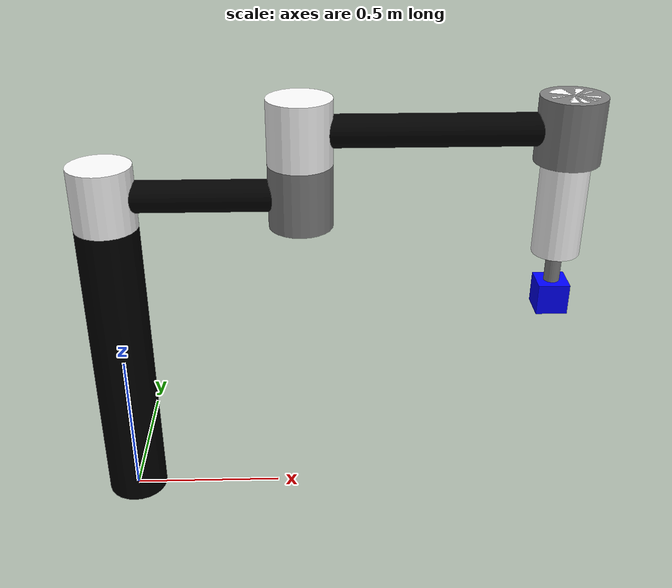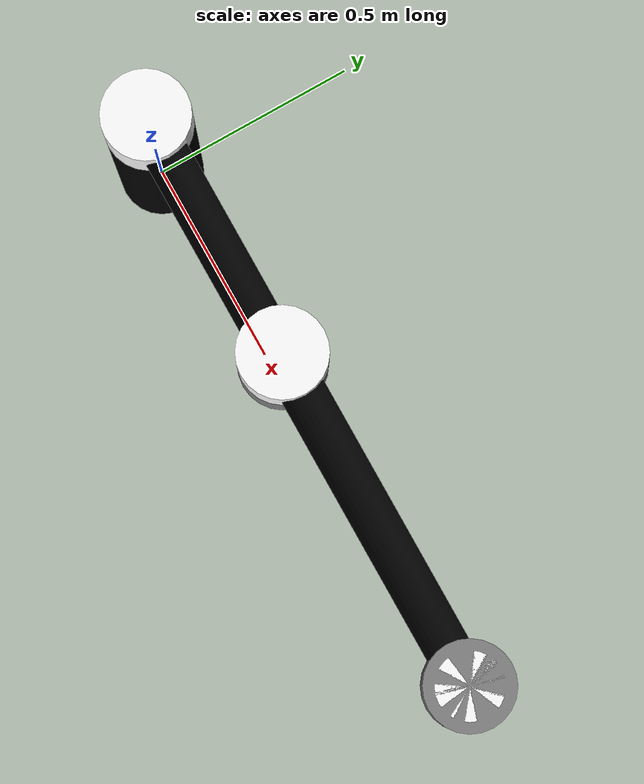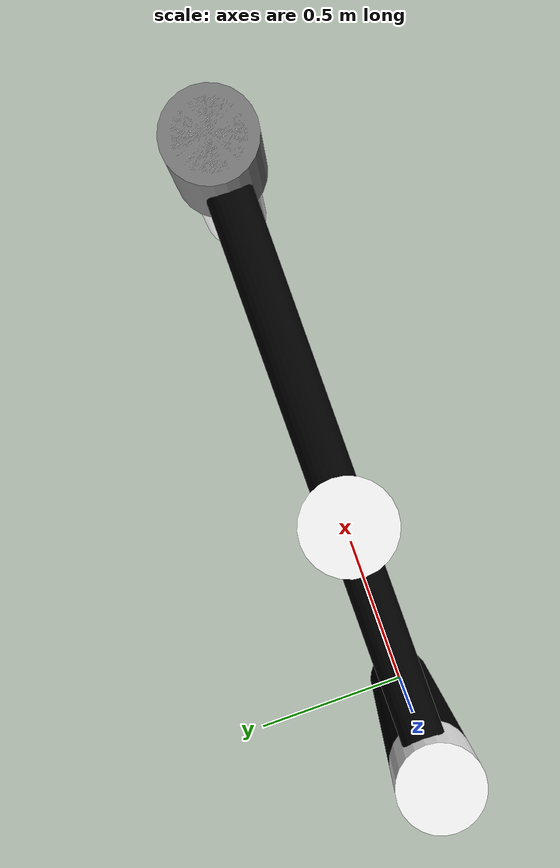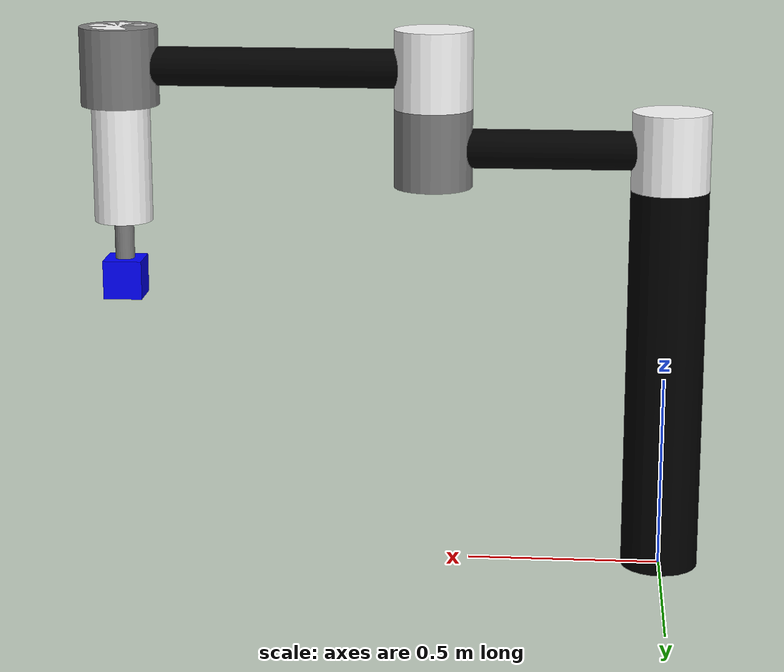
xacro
<?xml version="1.0"?>
<robot name="scara_robot" xmlns:xacro="http://www.ros.org/wiki/xacro">
    <material name="blue">
        <color rgba="0.0 0.0 1.0 1.0"/>
    </material>
    <material name="black">
        <color rgba="0.0 0.0 0.0 1.0"/>
    </material>
    <material name="white">
        <color rgba="1.0 1.0 1.0 1.0"/>
    </material>
       <material name="grey">
        <color rgba="0.5 0.5 0.5 1.0"/>
    </material>

    <xacro:property name="l0" value="0.7" />
    <xacro:property name="l1" value="0.6" />
    <xacro:property name="l2" value="0.8" />

    <xacro:property name="r" value="0.1" />
    <xacro:property name="d1" value="1" />
    <xacro:property name="d2" value="0.2" />
    <xacro:property name="d4" value="0.1" />
    <xacro:property name="d5" value="0.1" />
    <xacro:property name="d3" value="${d1+2*d2-d4-d5-l0}" />

    <link name="world"/>
    <link name="base_link">
        <visual>
            <origin xyz="0.0 0.0 ${d1/2}" rpy="0.0 0.0 0.0"/>
            <geometry>
                <cylinder length="${d1}" radius="${r}"/>
            </geometry>
            <material name="black"/>
        </visual>
    </link>
    <joint name="base_joint" type="fixed">
        <parent link="world"/>
        <child link="base_link"/>
    </joint>

    <link name="arm1_cylinder">
        <visual>
            <origin xyz="0.0 0.0 0.0" rpy="0.0 0.0 0.0"/>
            <geometry>
                <cylinder length="${d2}" radius="${r}"/>
            </geometry>
            <material name="white"/>
        </visual>
    </link>
    <joint name="arm1_joint_Gelenk" type="revolute">
        <origin xyz="0.0 0.0 ${d1+d2/2}" rpy="0.0 0.0 0.0"/>
        <parent link="base_link"/>
        <child link="arm1_cylinder"/>
        <axis xyz="0.0 0.0 ${d1+d2}"/>
        <limit lower="-1.0" upper="1.0" effort="1000.0" velocity="1000.0"/>
    </joint>

    <link name="arm1_connection">
        <visual>
            <origin xyz="0.0 0.0 0.0" rpy="0.0 1.57075 0.0"/>
            <geometry>
                <cylinder length="${l1}" radius="0.05"/>
            </geometry>
            <material name="black"/>
        </visual>
    </link>
    <joint name="arm1_joint_box" type="fixed">
        <origin xyz="${l1/2} 0.0 0.0" rpy="0.0 0.0 0.0" />
        <parent link="arm1_cylinder"/>
        <child link="arm1_connection"/>
    </joint>

    <link name="arm2_cylinder1">
        <visual>
            <origin xyz="0.0 0.0 0.0" rpy="0.0 0.0 0.0"/>
            <geometry>
                <cylinder length="${d2}" radius="${r}"/>
            </geometry>
            <material name="grey"/>
        </visual>
    </link>
    <joint name="arm2_joint_Gelenk" type="fixed">
        <origin xyz="${l1/2} 0.0 0.0" rpy="0.0 0.0 0.0"/>
        <parent link="arm1_connection"/>
        <child link="arm2_cylinder1"/>
    </joint>

    <link name="arm2_cylinder2">
        <visual>
            <origin xyz="0.0 0.0 0.0" rpy="0.0 0.0 0.0"/>
            <geometry>
                <cylinder length="${d2}" radius="${r}"/>
            </geometry>
            <material name="white"/>
        </visual>
    </link>
    <joint name="arm2_joint" type="revolute">
        <origin xyz="0.0 0.0 ${d2}" rpy="0.0 0.0 0.0"/>
        <parent link="arm2_cylinder1"/>
        <child link="arm2_cylinder2"/>
        <axis xyz="0.0 0.0 1.0"/>
        <limit lower="-1.0" upper="1.0" effort="1000.0" velocity="1000.0"/>
    </joint>

    <link name="arm2_connection">
        <visual>
            <origin xyz="0.0 0.0 0.0" rpy="0.0 1.57075 0.0"/>
            <geometry>
                <cylinder length="${l2}" radius="0.05"/>
            </geometry>
            <material name="black"/>
        </visual>
    </link>
    <joint name="arm2_joint_box" type="fixed">
        <origin xyz="${l2/2} 0.0 0.0" rpy="0.0 0.0 0.0"/>
        <parent link="arm2_cylinder2"/>
        <child link="arm2_connection"/>
    </joint>

    <link name="arm3_cylinder1">
        <visual>
            <origin xyz="0.0 0.0 0.0" rpy="0.0 0.0 0.0"/>
            <geometry>
                <cylinder length="${d2}" radius="${r}"/>
            </geometry>
            <material name="grey"/>
        </visual>
    </link>
    <joint name="arm3_joint_Gelenk" type="fixed">
        <origin xyz="${l2/2} 0.0 0.0" rpy="0.0 0.0 0.0"/>
        <parent link="arm2_connection"/>
        <child link="arm3_cylinder1"/>
    </joint>

    <link name="arm3_prismatic">
        <visual>
            <origin xyz="0.0 0.0 ${-d3/2}" rpy="0.0 0.0 0.0"/>
            <geometry>
                <cylinder length="${d3}" radius="0.075"/>
            </geometry>
            <material name="white"/>
        </visual>
    </link>
    <joint name="arm3_joint" type="prismatic">
        <origin xyz="0.0 0.0 0.1" rpy="0.0 0.0 0.0"/>
        <parent link="arm3_cylinder1"/>
        <child link="arm3_prismatic"/>
        <axis xyz="0.0 0.0 1.0"/>
        <limit lower="0.0" upper="${d3-d2}" effort="1000.0" velocity="1000.0"/>
    </joint>

    <link name="arm3_connection">
        <visual>
            <origin xyz="0.0 0.0 0.0" rpy="0.0 0.0 0.0"/>
            <geometry>
                <cylinder length="${d4}" radius="0.025"/>
            </geometry>
            <material name="grey"/>
        </visual>
    </link>
    <joint name="arm3_joint_box" type="revolute">
            <origin xyz="0.0 0.0 ${-d3-d4/2}" rpy="0.0 0.0 0.0"/>
            <parent link="arm3_prismatic"/>
            <child link="arm3_connection"/>
            <axis xyz="0.0 0.0 1.0"/>
            <mimic joint="arm1_joint_Gelenk" multiplier="1" offset="1"/>
            <limit lower="-1.5" upper="1.5" effort="1000.0" velocity="1000.0"/>
    </joint>

    <link name="Hand_Base">
        <visual>
            <origin xyz="0.0 0.0 ${d4/2}" rpy="0.0 0.0 0.0"/>
            <geometry>
                <box size="${d5} ${d5} ${d5}"/>
            </geometry>
            <material name="blue"/>
        </visual>
    </link>
    <joint name="Hand_Base_joint" type="fixed">
        <origin xyz="0.0 0.0 ${-d5 - d4/2}" rpy="0.0 0.0 0.0"/>
        <parent link="arm3_connection"/>
        <child link="Hand_Base"/>
    </joint>

</robot>
